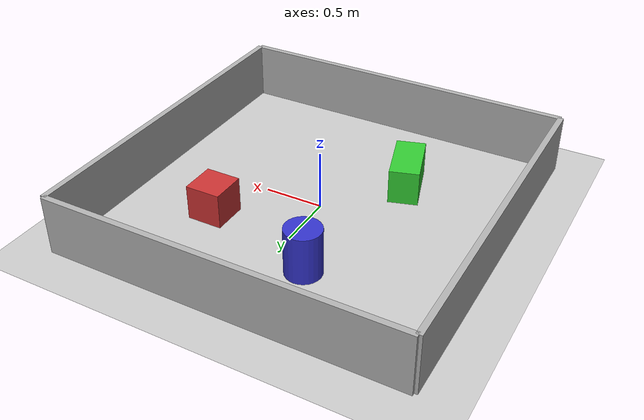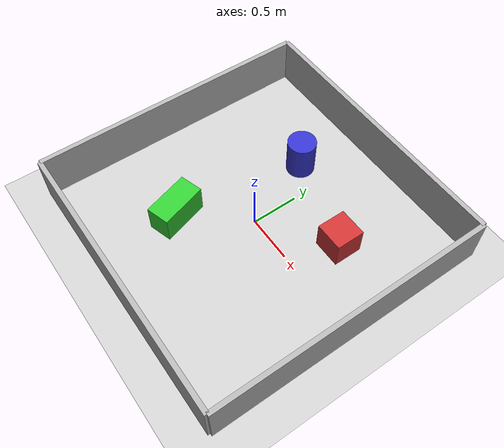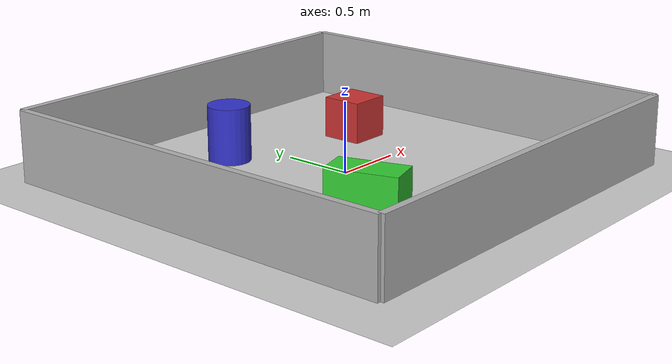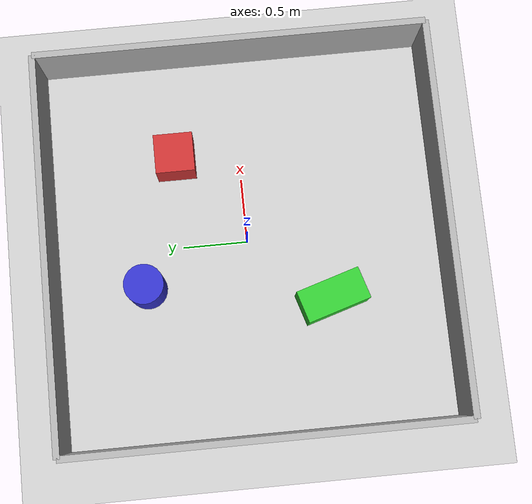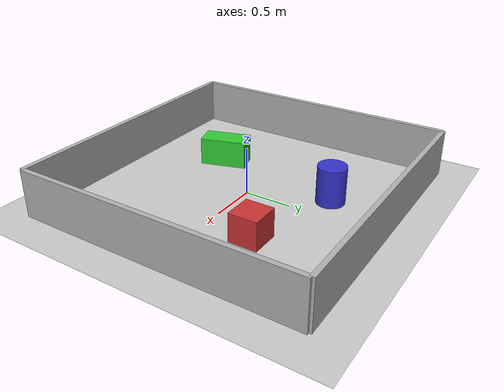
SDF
<?xml version="1.0"?>
<!--
  Test world for robocept simulation (Ignition Fortress).
  3m x 3m room with walls and obstacles.
-->
<sdf version="1.8">
  <world name="robocept_test">

    <!-- Physics -->
    <physics name="1ms" type="ode">
      <max_step_size>0.001</max_step_size>
      <real_time_factor>1.0</real_time_factor>
      <real_time_update_rate>1000</real_time_update_rate>
    </physics>

    <!-- Required plugins for Ignition Fortress -->
    <plugin filename="ignition-gazebo-physics-system" name="ignition::gazebo::systems::Physics"/>
    <plugin filename="ignition-gazebo-scene-broadcaster-system" name="ignition::gazebo::systems::SceneBroadcaster"/>
    <plugin filename="ignition-gazebo-user-commands-system" name="ignition::gazebo::systems::UserCommands"/>
    <plugin filename="ignition-gazebo-sensors-system" name="ignition::gazebo::systems::Sensors">
      <render_engine>ogre2</render_engine>
    </plugin>
    <plugin filename="ignition-gazebo-contact-system" name="ignition::gazebo::systems::Contact"/>
    <plugin filename="ignition-gazebo-imu-system" name="ignition::gazebo::systems::Imu"/>

    <!-- Lighting -->
    <light type="directional" name="sun">
      <cast_shadows>true</cast_shadows>
      <pose>0 0 10 0 0 0</pose>
      <diffuse>0.8 0.8 0.8 1</diffuse>
      <specular>0.2 0.2 0.2 1</specular>
      <attenuation>
        <range>1000</range>
        <constant>0.9</constant>
        <linear>0.01</linear>
        <quadratic>0.001</quadratic>
      </attenuation>
      <direction>-0.5 0.1 -0.9</direction>
    </light>

    <!-- Ground plane -->
    <model name="ground_plane">
      <static>true</static>
      <link name="link">
        <collision name="collision">
          <geometry>
            <plane><normal>0 0 1</normal><size>100 100</size></plane>
          </geometry>
        </collision>
        <visual name="visual">
          <geometry>
            <plane><normal>0 0 1</normal><size>100 100</size></plane>
          </geometry>
          <material>
            <ambient>0.8 0.8 0.8 1</ambient>
            <diffuse>0.8 0.8 0.8 1</diffuse>
          </material>
        </visual>
      </link>
    </model>

    <!-- North wall -->
    <model name="wall_north">
      <static>true</static>
      <pose>0 1.5 0.25 0 0 0</pose>
      <link name="link">
        <collision name="collision">
          <geometry><box><size>3.0 0.05 0.5</size></box></geometry>
        </collision>
        <visual name="visual">
          <geometry><box><size>3.0 0.05 0.5</size></box></geometry>
          <material><ambient>0.7 0.7 0.7 1</ambient><diffuse>0.7 0.7 0.7 1</diffuse></material>
        </visual>
      </link>
    </model>

    <!-- South wall -->
    <model name="wall_south">
      <static>true</static>
      <pose>0 -1.5 0.25 0 0 0</pose>
      <link name="link">
        <collision name="collision">
          <geometry><box><size>3.0 0.05 0.5</size></box></geometry>
        </collision>
        <visual name="visual">
          <geometry><box><size>3.0 0.05 0.5</size></box></geometry>
          <material><ambient>0.7 0.7 0.7 1</ambient><diffuse>0.7 0.7 0.7 1</diffuse></material>
        </visual>
      </link>
    </model>

    <!-- East wall -->
    <model name="wall_east">
      <static>true</static>
      <pose>1.5 0 0.25 0 0 1.5708</pose>
      <link name="link">
        <collision name="collision">
          <geometry><box><size>3.0 0.05 0.5</size></box></geometry>
        </collision>
        <visual name="visual">
          <geometry><box><size>3.0 0.05 0.5</size></box></geometry>
          <material><ambient>0.7 0.7 0.7 1</ambient><diffuse>0.7 0.7 0.7 1</diffuse></material>
        </visual>
      </link>
    </model>

    <!-- West wall -->
    <model name="wall_west">
      <static>true</static>
      <pose>-1.5 0 0.25 0 0 1.5708</pose>
      <link name="link">
        <collision name="collision">
          <geometry><box><size>3.0 0.05 0.5</size></box></geometry>
        </collision>
        <visual name="visual">
          <geometry><box><size>3.0 0.05 0.5</size></box></geometry>
          <material><ambient>0.7 0.7 0.7 1</ambient><diffuse>0.7 0.7 0.7 1</diffuse></material>
        </visual>
      </link>
    </model>

    <!-- Red box obstacle -->
    <model name="obstacle_1">
      <static>true</static>
      <pose>0.7 0.5 0.15 0 0 0</pose>
      <link name="link">
        <collision name="collision">
          <geometry><box><size>0.3 0.3 0.3</size></box></geometry>
        </collision>
        <visual name="visual">
          <geometry><box><size>0.3 0.3 0.3</size></box></geometry>
          <material><ambient>0.8 0.2 0.2 1</ambient><diffuse>0.8 0.2 0.2 1</diffuse></material>
        </visual>
      </link>
    </model>

    <!-- Green box obstacle -->
    <model name="obstacle_2">
      <static>true</static>
      <pose>-0.5 -0.6 0.15 0 0 0.3</pose>
      <link name="link">
        <collision name="collision">
          <geometry><box><size>0.25 0.5 0.3</size></box></geometry>
        </collision>
        <visual name="visual">
          <geometry><box><size>0.25 0.5 0.3</size></box></geometry>
          <material><ambient>0.2 0.8 0.2 1</ambient><diffuse>0.2 0.8 0.2 1</diffuse></material>
        </visual>
      </link>
    </model>

    <!-- Blue cylinder obstacle -->
    <model name="obstacle_3">
      <static>true</static>
      <pose>-0.3 0.8 0.2 0 0 0</pose>
      <link name="link">
        <collision name="collision">
          <geometry><cylinder><radius>0.15</radius><length>0.4</length></cylinder></geometry>
        </collision>
        <visual name="visual">
          <geometry><cylinder><radius>0.15</radius><length>0.4</length></cylinder></geometry>
          <material><ambient>0.2 0.2 0.8 1</ambient><diffuse>0.2 0.2 0.8 1</diffuse></material>
        </visual>
      </link>
    </model>

  </world>
</sdf>
